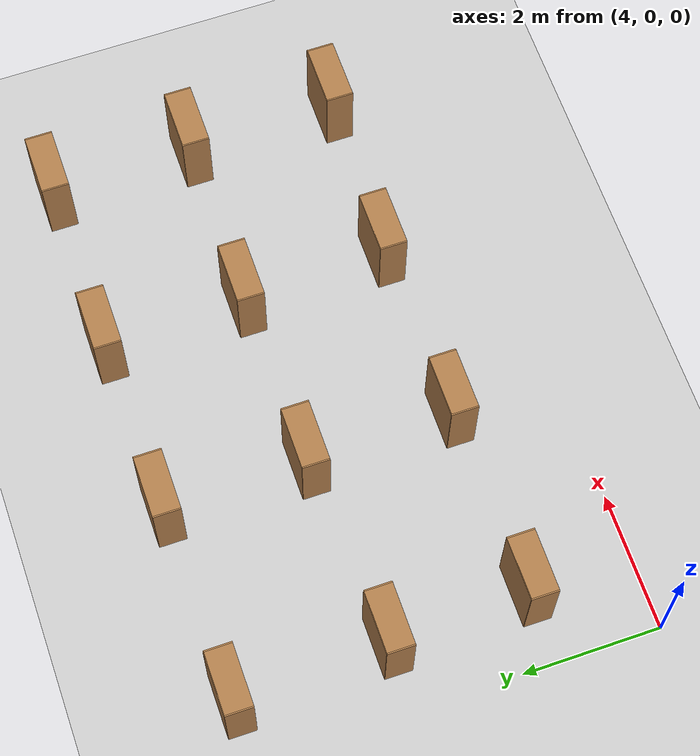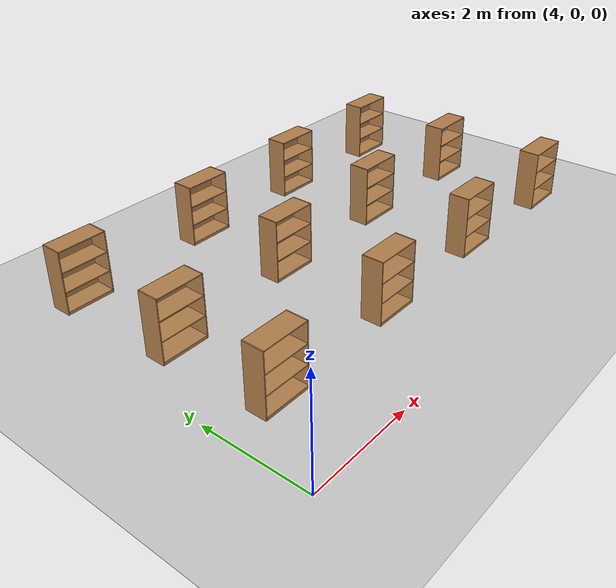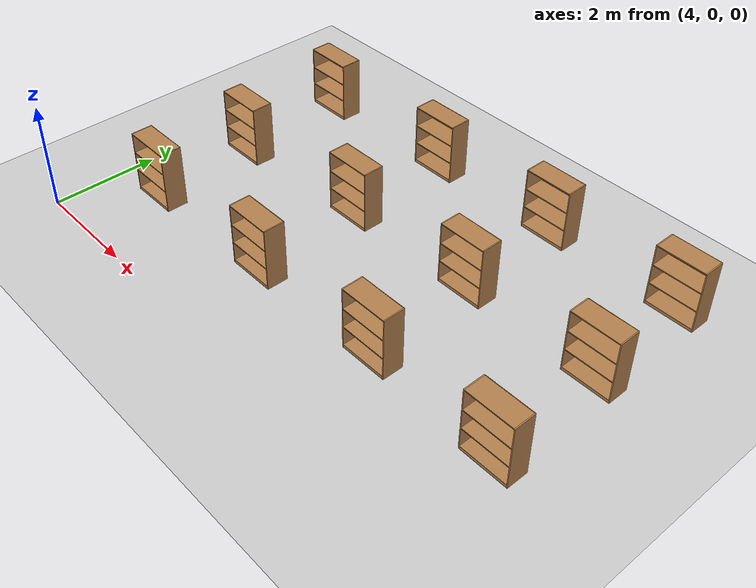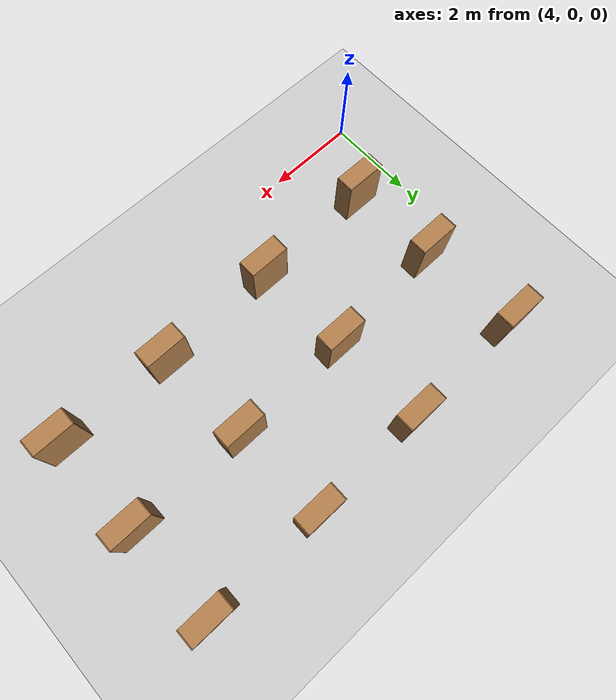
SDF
<sdf version="1.6">
 <world name="default">
  <model name="ground_plane">
   <static>1</static>
   <link name="link">
    <collision name="collision">
     <geometry><plane><normal>0 0 1</normal><size>100 100</size></plane></geometry>
     <surface><friction><ode><mu>100</mu><mu2>50</mu2></ode></friction></surface>
    </collision>
    <visual name="visual">
     <cast_shadows>0</cast_shadows>
     <geometry><plane><normal>0 0 1</normal><size>100 100</size></plane></geometry>
     <material>
      <script><uri>file://media/materials/scripts/gazebo.material</uri><name>Gazebo/Grey</name></script>
     </material>
    </visual>
   </link>
  </model>
  <model name="bookshelf">
   <static>1</static>
   <link name="link">
    <inertial><mass>1</mass></inertial>
    <collision name="back">
     <pose>0 0.005 0.6 0 -0 0</pose>
     <geometry><box><size>0.9 0.01 1.2</size></box></geometry>
    </collision>
    <visual name="visual1">
     <pose>0 0.005 0.6 0 -0 0</pose>
     <geometry><box><size>0.9 0.01 1.2</size></box></geometry>
     <material>
      <script><uri>file://media/materials/scripts/gazebo.material</uri><name>Gazebo/Wood</name></script>
     </material>
    </visual>
    <collision name="left_side">
     <pose>0.45 -0.195 0.6 0 -0 0</pose>
     <geometry><box><size>0.02 0.4 1.2</size></box></geometry>
    </collision>
    <visual name="visual2">
     <pose>0.45 -0.195 0.6 0 -0 0</pose>
     <geometry><box><size>0.02 0.4 1.2</size></box></geometry>
     <material>
      <script><uri>file://media/materials/scripts/gazebo.material</uri><name>Gazebo/Wood</name></script>
     </material>
    </visual>
    <collision name="right_side">
     <pose>-0.45 -0.195 0.6 0 -0 0</pose>
     <geometry><box><size>0.02 0.4 1.2</size></box></geometry>
    </collision>
    <visual name="visual3">
     <pose>-0.45 -0.195 0.6 0 -0 0</pose>
     <geometry><box><size>0.02 0.4 1.2</size></box></geometry>
     <material>
      <script><uri>file://media/materials/scripts/gazebo.material</uri><name>Gazebo/Wood</name></script>
     </material>
    </visual>
    <collision name="bottom">
     <pose>0 -0.195 0.03 0 -0 0</pose>
     <geometry><box><size>0.88 0.4 0.06</size></box></geometry>
    </collision>
    <visual name="visual4">
     <pose>0 -0.195 0.03 0 -0 0</pose>
     <geometry><box><size>0.88 0.4 0.06</size></box></geometry>
     <material>
      <script><uri>file://media/materials/scripts/gazebo.material</uri><name>Gazebo/Wood</name></script>
     </material>
    </visual>
    <collision name="top">
     <pose>0 -0.195 1.19 0 -0 0</pose>
     <geometry><box><size>0.88 0.4 0.02</size></box></geometry>
    </collision>
    <visual name="visual5">
     <pose>0 -0.195 1.19 0 -0 0</pose>
     <geometry><box><size>0.88 0.4 0.02</size></box></geometry>
     <material>
      <script><uri>file://media/materials/scripts/gazebo.material</uri><name>Gazebo/Wood</name></script>
     </material>
    </visual>
    <collision name="low_shelf">
     <pose>0 -0.195 0.43 0 -0 0</pose>
     <geometry><box><size>0.88 0.4 0.02</size></box></geometry>
    </collision>
    <visual name="visual6">
     <pose>0 -0.195 0.43 0 -0 0</pose>
     <geometry><box><size>0.88 0.4 0.02</size></box></geometry>
     <material>
      <script><uri>file://media/materials/scripts/gazebo.material</uri><name>Gazebo/Wood</name></script>
     </material>
    </visual>
    <collision name="high_shelf">
     <pose>0 -0.195 0.8 0 -0 0</pose>
     <geometry><box><size>0.88 0.4 0.02</size></box></geometry>
    </collision>
    <visual name="visual7">
     <pose>0 -0.195 0.8 0 -0 0</pose>
     <geometry><box><size>0.88 0.4 0.02</size></box></geometry>
     <material>
      <script><uri>file://media/materials/scripts/gazebo.material</uri><name>Gazebo/Wood</name></script>
     </material>
    </visual>
   </link>
   <pose>5.07069 1.74089 0 0 -0 0</pose>
  </model>
  <model name="bookshelf_0">
   <static>1</static>
   <link name="link">
    <inertial><mass>1</mass></inertial>
    <collision name="back">
     <pose>0 0.005 0.6 0 -0 0</pose>
     <geometry><box><size>0.9 0.01 1.2</size></box></geometry>
    </collision>
    <visual name="visual1">
     <pose>0 0.005 0.6 0 -0 0</pose>
     <geometry><box><size>0.9 0.01 1.2</size></box></geometry>
     <material>
      <script><uri>file://media/materials/scripts/gazebo.material</uri><name>Gazebo/Wood</name></script>
     </material>
    </visual>
    <collision name="left_side">
     <pose>0.45 -0.195 0.6 0 -0 0</pose>
     <geometry><box><size>0.02 0.4 1.2</size></box></geometry>
    </collision>
    <visual name="visual2">
     <pose>0.45 -0.195 0.6 0 -0 0</pose>
     <geometry><box><size>0.02 0.4 1.2</size></box></geometry>
     <material>
      <script><uri>file://media/materials/scripts/gazebo.material</uri><name>Gazebo/Wood</name></script>
     </material>
    </visual>
    <collision name="right_side">
     <pose>-0.45 -0.195 0.6 0 -0 0</pose>
     <geometry><box><size>0.02 0.4 1.2</size></box></geometry>
    </collision>
    <visual name="visual3">
     <pose>-0.45 -0.195 0.6 0 -0 0</pose>
     <geometry><box><size>0.02 0.4 1.2</size></box></geometry>
     <material>
      <script><uri>file://media/materials/scripts/gazebo.material</uri><name>Gazebo/Wood</name></script>
     </material>
    </visual>
    <collision name="bottom">
     <pose>0 -0.195 0.03 0 -0 0</pose>
     <geometry><box><size>0.88 0.4 0.06</size></box></geometry>
    </collision>
    <visual name="visual4">
     <pose>0 -0.195 0.03 0 -0 0</pose>
     <geometry><box><size>0.88 0.4 0.06</size></box></geometry>
     <material>
      <script><uri>file://media/materials/scripts/gazebo.material</uri><name>Gazebo/Wood</name></script>
     </material>
    </visual>
    <collision name="top">
     <pose>0 -0.195 1.19 0 -0 0</pose>
     <geometry><box><size>0.88 0.4 0.02</size></box></geometry>
    </collision>
    <visual name="visual5">
     <pose>0 -0.195 1.19 0 -0 0</pose>
     <geometry><box><size>0.88 0.4 0.02</size></box></geometry>
     <material>
      <script><uri>file://media/materials/scripts/gazebo.material</uri><name>Gazebo/Wood</name></script>
     </material>
    </visual>
    <collision name="low_shelf">
     <pose>0 -0.195 0.43 0 -0 0</pose>
     <geometry><box><size>0.88 0.4 0.02</size></box></geometry>
    </collision>
    <visual name="visual6">
     <pose>0 -0.195 0.43 0 -0 0</pose>
     <geometry><box><size>0.88 0.4 0.02</size></box></geometry>
     <material>
      <script><uri>file://media/materials/scripts/gazebo.material</uri><name>Gazebo/Wood</name></script>
     </material>
    </visual>
    <collision name="high_shelf">
     <pose>0 -0.195 0.8 0 -0 0</pose>
     <geometry><box><size>0.88 0.4 0.02</size></box></geometry>
    </collision>
    <visual name="visual7">
     <pose>0 -0.195 0.8 0 -0 0</pose>
     <geometry><box><size>0.88 0.4 0.02</size></box></geometry>
     <material>
      <script><uri>file://media/materials/scripts/gazebo.material</uri><name>Gazebo/Wood</name></script>
     </material>
    </visual>
   </link>
   <pose>4.99494 3.76583 0 0 -0 0</pose>
  </model>
  <model name="bookshelf_1">
   <static>1</static>
   <link name="link">
    <inertial><mass>1</mass></inertial>
    <collision name="back">
     <pose>0 0.005 0.6 0 -0 0</pose>
     <geometry><box><size>0.9 0.01 1.2</size></box></geometry>
    </collision>
    <visual name="visual1">
     <pose>0 0.005 0.6 0 -0 0</pose>
     <geometry><box><size>0.9 0.01 1.2</size></box></geometry>
     <material>
      <script><uri>file://media/materials/scripts/gazebo.material</uri><name>Gazebo/Wood</name></script>
     </material>
    </visual>
    <collision name="left_side">
     <pose>0.45 -0.195 0.6 0 -0 0</pose>
     <geometry><box><size>0.02 0.4 1.2</size></box></geometry>
    </collision>
    <visual name="visual2">
     <pose>0.45 -0.195 0.6 0 -0 0</pose>
     <geometry><box><size>0.02 0.4 1.2</size></box></geometry>
     <material>
      <script><uri>file://media/materials/scripts/gazebo.material</uri><name>Gazebo/Wood</name></script>
     </material>
    </visual>
    <collision name="right_side">
     <pose>-0.45 -0.195 0.6 0 -0 0</pose>
     <geometry><box><size>0.02 0.4 1.2</size></box></geometry>
    </collision>
    <visual name="visual3">
     <pose>-0.45 -0.195 0.6 0 -0 0</pose>
     <geometry><box><size>0.02 0.4 1.2</size></box></geometry>
     <material>
      <script><uri>file://media/materials/scripts/gazebo.material</uri><name>Gazebo/Wood</name></script>
     </material>
    </visual>
    <collision name="bottom">
     <pose>0 -0.195 0.03 0 -0 0</pose>
     <geometry><box><size>0.88 0.4 0.06</size></box></geometry>
    </collision>
    <visual name="visual4">
     <pose>0 -0.195 0.03 0 -0 0</pose>
     <geometry><box><size>0.88 0.4 0.06</size></box></geometry>
     <material>
      <script><uri>file://media/materials/scripts/gazebo.material</uri><name>Gazebo/Wood</name></script>
     </material>
    </visual>
    <collision name="top">
     <pose>0 -0.195 1.19 0 -0 0</pose>
     <geometry><box><size>0.88 0.4 0.02</size></box></geometry>
    </collision>
    <visual name="visual5">
     <pose>0 -0.195 1.19 0 -0 0</pose>
     <geometry><box><size>0.88 0.4 0.02</size></box></geometry>
     <material>
      <script><uri>file://media/materials/scripts/gazebo.material</uri><name>Gazebo/Wood</name></script>
     </material>
    </visual>
    <collision name="low_shelf">
     <pose>0 -0.195 0.43 0 -0 0</pose>
     <geometry><box><size>0.88 0.4 0.02</size></box></geometry>
    </collision>
    <visual name="visual6">
     <pose>0 -0.195 0.43 0 -0 0</pose>
     <geometry><box><size>0.88 0.4 0.02</size></box></geometry>
     <material>
      <script><uri>file://media/materials/scripts/gazebo.material</uri><name>Gazebo/Wood</name></script>
     </material>
    </visual>
    <collision name="high_shelf">
     <pose>0 -0.195 0.8 0 -0 0</pose>
     <geometry><box><size>0.88 0.4 0.02</size></box></geometry>
    </collision>
    <visual name="visual7">
     <pose>0 -0.195 0.8 0 -0 0</pose>
     <geometry><box><size>0.88 0.4 0.02</size></box></geometry>
     <material>
      <script><uri>file://media/materials/scripts/gazebo.material</uri><name>Gazebo/Wood</name></script>
     </material>
    </visual>
   </link>
   <pose>4.89893 5.99147 0 0 -0 0</pose>
  </model>
  <model name="bookshelf_2">
   <static>1</static>
   <link name="link">
    <inertial><mass>1</mass></inertial>
    <collision name="back">
     <pose>0 0.005 0.6 0 -0 0</pose>
     <geometry><box><size>0.9 0.01 1.2</size></box></geometry>
    </collision>
    <visual name="visual1">
     <pose>0 0.005 0.6 0 -0 0</pose>
     <geometry><box><size>0.9 0.01 1.2</size></box></geometry>
     <material>
      <script><uri>file://media/materials/scripts/gazebo.material</uri><name>Gazebo/Wood</name></script>
     </material>
    </visual>
    <collision name="left_side">
     <pose>0.45 -0.195 0.6 0 -0 0</pose>
     <geometry><box><size>0.02 0.4 1.2</size></box></geometry>
    </collision>
    <visual name="visual2">
     <pose>0.45 -0.195 0.6 0 -0 0</pose>
     <geometry><box><size>0.02 0.4 1.2</size></box></geometry>
     <material>
      <script><uri>file://media/materials/scripts/gazebo.material</uri><name>Gazebo/Wood</name></script>
     </material>
    </visual>
    <collision name="right_side">
     <pose>-0.45 -0.195 0.6 0 -0 0</pose>
     <geometry><box><size>0.02 0.4 1.2</size></box></geometry>
    </collision>
    <visual name="visual3">
     <pose>-0.45 -0.195 0.6 0 -0 0</pose>
     <geometry><box><size>0.02 0.4 1.2</size></box></geometry>
     <material>
      <script><uri>file://media/materials/scripts/gazebo.material</uri><name>Gazebo/Wood</name></script>
     </material>
    </visual>
    <collision name="bottom">
     <pose>0 -0.195 0.03 0 -0 0</pose>
     <geometry><box><size>0.88 0.4 0.06</size></box></geometry>
    </collision>
    <visual name="visual4">
     <pose>0 -0.195 0.03 0 -0 0</pose>
     <geometry><box><size>0.88 0.4 0.06</size></box></geometry>
     <material>
      <script><uri>file://media/materials/scripts/gazebo.material</uri><name>Gazebo/Wood</name></script>
     </material>
    </visual>
    <collision name="top">
     <pose>0 -0.195 1.19 0 -0 0</pose>
     <geometry><box><size>0.88 0.4 0.02</size></box></geometry>
    </collision>
    <visual name="visual5">
     <pose>0 -0.195 1.19 0 -0 0</pose>
     <geometry><box><size>0.88 0.4 0.02</size></box></geometry>
     <material>
      <script><uri>file://media/materials/scripts/gazebo.material</uri><name>Gazebo/Wood</name></script>
     </material>
    </visual>
    <collision name="low_shelf">
     <pose>0 -0.195 0.43 0 -0 0</pose>
     <geometry><box><size>0.88 0.4 0.02</size></box></geometry>
    </collision>
    <visual name="visual6">
     <pose>0 -0.195 0.43 0 -0 0</pose>
     <geometry><box><size>0.88 0.4 0.02</size></box></geometry>
     <material>
      <script><uri>file://media/materials/scripts/gazebo.material</uri><name>Gazebo/Wood</name></script>
     </material>
    </visual>
    <collision name="high_shelf">
     <pose>0 -0.195 0.8 0 -0 0</pose>
     <geometry><box><size>0.88 0.4 0.02</size></box></geometry>
    </collision>
    <visual name="visual7">
     <pose>0 -0.195 0.8 0 -0 0</pose>
     <geometry><box><size>0.88 0.4 0.02</size></box></geometry>
     <material>
      <script><uri>file://media/materials/scripts/gazebo.material</uri><name>Gazebo/Wood</name></script>
     </material>
    </visual>
   </link>
   <pose>7.85423 1.81787 0 0 -0 0</pose>
  </model>
  <model name="bookshelf_3">
   <static>1</static>
   <link name="link">
    <inertial><mass>1</mass></inertial>
    <collision name="back">
     <pose>0 0.005 0.6 0 -0 0</pose>
     <geometry><box><size>0.9 0.01 1.2</size></box></geometry>
    </collision>
    <visual name="visual1">
     <pose>0 0.005 0.6 0 -0 0</pose>
     <geometry><box><size>0.9 0.01 1.2</size></box></geometry>
     <material>
      <script><uri>file://media/materials/scripts/gazebo.material</uri><name>Gazebo/Wood</name></script>
     </material>
    </visual>
    <collision name="left_side">
     <pose>0.45 -0.195 0.6 0 -0 0</pose>
     <geometry><box><size>0.02 0.4 1.2</size></box></geometry>
    </collision>
    <visual name="visual2">
     <pose>0.45 -0.195 0.6 0 -0 0</pose>
     <geometry><box><size>0.02 0.4 1.2</size></box></geometry>
     <material>
      <script><uri>file://media/materials/scripts/gazebo.material</uri><name>Gazebo/Wood</name></script>
     </material>
    </visual>
    <collision name="right_side">
     <pose>-0.45 -0.195 0.6 0 -0 0</pose>
     <geometry><box><size>0.02 0.4 1.2</size></box></geometry>
    </collision>
    <visual name="visual3">
     <pose>-0.45 -0.195 0.6 0 -0 0</pose>
     <geometry><box><size>0.02 0.4 1.2</size></box></geometry>
     <material>
      <script><uri>file://media/materials/scripts/gazebo.material</uri><name>Gazebo/Wood</name></script>
     </material>
    </visual>
    <collision name="bottom">
     <pose>0 -0.195 0.03 0 -0 0</pose>
     <geometry><box><size>0.88 0.4 0.06</size></box></geometry>
    </collision>
    <visual name="visual4">
     <pose>0 -0.195 0.03 0 -0 0</pose>
     <geometry><box><size>0.88 0.4 0.06</size></box></geometry>
     <material>
      <script><uri>file://media/materials/scripts/gazebo.material</uri><name>Gazebo/Wood</name></script>
     </material>
    </visual>
    <collision name="top">
     <pose>0 -0.195 1.19 0 -0 0</pose>
     <geometry><box><size>0.88 0.4 0.02</size></box></geometry>
    </collision>
    <visual name="visual5">
     <pose>0 -0.195 1.19 0 -0 0</pose>
     <geometry><box><size>0.88 0.4 0.02</size></box></geometry>
     <material>
      <script><uri>file://media/materials/scripts/gazebo.material</uri><name>Gazebo/Wood</name></script>
     </material>
    </visual>
    <collision name="low_shelf">
     <pose>0 -0.195 0.43 0 -0 0</pose>
     <geometry><box><size>0.88 0.4 0.02</size></box></geometry>
    </collision>
    <visual name="visual6">
     <pose>0 -0.195 0.43 0 -0 0</pose>
     <geometry><box><size>0.88 0.4 0.02</size></box></geometry>
     <material>
      <script><uri>file://media/materials/scripts/gazebo.material</uri><name>Gazebo/Wood</name></script>
     </material>
    </visual>
    <collision name="high_shelf">
     <pose>0 -0.195 0.8 0 -0 0</pose>
     <geometry><box><size>0.88 0.4 0.02</size></box></geometry>
    </collision>
    <visual name="visual7">
     <pose>0 -0.195 0.8 0 -0 0</pose>
     <geometry><box><size>0.88 0.4 0.02</size></box></geometry>
     <material>
      <script><uri>file://media/materials/scripts/gazebo.material</uri><name>Gazebo/Wood</name></script>
     </material>
    </visual>
   </link>
   <pose>7.78418 3.97715 0 0 -0 0</pose>
  </model>
  <model name="bookshelf_5">
   <static>1</static>
   <link name="link">
    <inertial><mass>1</mass></inertial>
    <collision name="back">
     <pose>0 0.005 0.6 0 -0 0</pose>
     <geometry><box><size>0.9 0.01 1.2</size></box></geometry>
    </collision>
    <visual name="visual1">
     <pose>0 0.005 0.6 0 -0 0</pose>
     <geometry><box><size>0.9 0.01 1.2</size></box></geometry>
     <material>
      <script><uri>file://media/materials/scripts/gazebo.material</uri><name>Gazebo/Wood</name></script>
     </material>
    </visual>
    <collision name="left_side">
     <pose>0.45 -0.195 0.6 0 -0 0</pose>
     <geometry><box><size>0.02 0.4 1.2</size></box></geometry>
    </collision>
    <visual name="visual2">
     <pose>0.45 -0.195 0.6 0 -0 0</pose>
     <geometry><box><size>0.02 0.4 1.2</size></box></geometry>
     <material>
      <script><uri>file://media/materials/scripts/gazebo.material</uri><name>Gazebo/Wood</name></script>
     </material>
    </visual>
    <collision name="right_side">
     <pose>-0.45 -0.195 0.6 0 -0 0</pose>
     <geometry><box><size>0.02 0.4 1.2</size></box></geometry>
    </collision>
    <visual name="visual3">
     <pose>-0.45 -0.195 0.6 0 -0 0</pose>
     <geometry><box><size>0.02 0.4 1.2</size></box></geometry>
     <material>
      <script><uri>file://media/materials/scripts/gazebo.material</uri><name>Gazebo/Wood</name></script>
     </material>
    </visual>
    <collision name="bottom">
     <pose>0 -0.195 0.03 0 -0 0</pose>
     <geometry><box><size>0.88 0.4 0.06</size></box></geometry>
    </collision>
    <visual name="visual4">
     <pose>0 -0.195 0.03 0 -0 0</pose>
     <geometry><box><size>0.88 0.4 0.06</size></box></geometry>
     <material>
      <script><uri>file://media/materials/scripts/gazebo.material</uri><name>Gazebo/Wood</name></script>
     </material>
    </visual>
    <collision name="top">
     <pose>0 -0.195 1.19 0 -0 0</pose>
     <geometry><box><size>0.88 0.4 0.02</size></box></geometry>
    </collision>
    <visual name="visual5">
     <pose>0 -0.195 1.19 0 -0 0</pose>
     <geometry><box><size>0.88 0.4 0.02</size></box></geometry>
     <material>
      <script><uri>file://media/materials/scripts/gazebo.material</uri><name>Gazebo/Wood</name></script>
     </material>
    </visual>
    <collision name="low_shelf">
     <pose>0 -0.195 0.43 0 -0 0</pose>
     <geometry><box><size>0.88 0.4 0.02</size></box></geometry>
    </collision>
    <visual name="visual6">
     <pose>0 -0.195 0.43 0 -0 0</pose>
     <geometry><box><size>0.88 0.4 0.02</size></box></geometry>
     <material>
      <script><uri>file://media/materials/scripts/gazebo.material</uri><name>Gazebo/Wood</name></script>
     </material>
    </visual>
    <collision name="high_shelf">
     <pose>0 -0.195 0.8 0 -0 0</pose>
     <geometry><box><size>0.88 0.4 0.02</size></box></geometry>
    </collision>
    <visual name="visual7">
     <pose>0 -0.195 0.8 0 -0 0</pose>
     <geometry><box><size>0.88 0.4 0.02</size></box></geometry>
     <material>
      <script><uri>file://media/materials/scripts/gazebo.material</uri><name>Gazebo/Wood</name></script>
     </material>
    </visual>
   </link>
   <pose>10.5476 1.88264 0 0 -0 0</pose>
  </model>
  <model name="bookshelf_6">
   <static>1</static>
   <link name="link">
    <inertial><mass>1</mass></inertial>
    <collision name="back">
     <pose>0 0.005 0.6 0 -0 0</pose>
     <geometry><box><size>0.9 0.01 1.2</size></box></geometry>
    </collision>
    <visual name="visual1">
     <pose>0 0.005 0.6 0 -0 0</pose>
     <geometry><box><size>0.9 0.01 1.2</size></box></geometry>
     <material>
      <script><uri>file://media/materials/scripts/gazebo.material</uri><name>Gazebo/Wood</name></script>
     </material>
    </visual>
    <collision name="left_side">
     <pose>0.45 -0.195 0.6 0 -0 0</pose>
     <geometry><box><size>0.02 0.4 1.2</size></box></geometry>
    </collision>
    <visual name="visual2">
     <pose>0.45 -0.195 0.6 0 -0 0</pose>
     <geometry><box><size>0.02 0.4 1.2</size></box></geometry>
     <material>
      <script><uri>file://media/materials/scripts/gazebo.material</uri><name>Gazebo/Wood</name></script>
     </material>
    </visual>
    <collision name="right_side">
     <pose>-0.45 -0.195 0.6 0 -0 0</pose>
     <geometry><box><size>0.02 0.4 1.2</size></box></geometry>
    </collision>
    <visual name="visual3">
     <pose>-0.45 -0.195 0.6 0 -0 0</pose>
     <geometry><box><size>0.02 0.4 1.2</size></box></geometry>
     <material>
      <script><uri>file://media/materials/scripts/gazebo.material</uri><name>Gazebo/Wood</name></script>
     </material>
    </visual>
    <collision name="bottom">
     <pose>0 -0.195 0.03 0 -0 0</pose>
     <geometry><box><size>0.88 0.4 0.06</size></box></geometry>
    </collision>
    <visual name="visual4">
     <pose>0 -0.195 0.03 0 -0 0</pose>
     <geometry><box><size>0.88 0.4 0.06</size></box></geometry>
     <material>
      <script><uri>file://media/materials/scripts/gazebo.material</uri><name>Gazebo/Wood</name></script>
     </material>
    </visual>
    <collision name="top">
     <pose>0 -0.195 1.19 0 -0 0</pose>
     <geometry><box><size>0.88 0.4 0.02</size></box></geometry>
    </collision>
    <visual name="visual5">
     <pose>0 -0.195 1.19 0 -0 0</pose>
     <geometry><box><size>0.88 0.4 0.02</size></box></geometry>
     <material>
      <script><uri>file://media/materials/scripts/gazebo.material</uri><name>Gazebo/Wood</name></script>
     </material>
    </visual>
    <collision name="low_shelf">
     <pose>0 -0.195 0.43 0 -0 0</pose>
     <geometry><box><size>0.88 0.4 0.02</size></box></geometry>
    </collision>
    <visual name="visual6">
     <pose>0 -0.195 0.43 0 -0 0</pose>
     <geometry><box><size>0.88 0.4 0.02</size></box></geometry>
     <material>
      <script><uri>file://media/materials/scripts/gazebo.material</uri><name>Gazebo/Wood</name></script>
     </material>
    </visual>
    <collision name="high_shelf">
     <pose>0 -0.195 0.8 0 -0 0</pose>
     <geometry><box><size>0.88 0.4 0.02</size></box></geometry>
    </collision>
    <visual name="visual7">
     <pose>0 -0.195 0.8 0 -0 0</pose>
     <geometry><box><size>0.88 0.4 0.02</size></box></geometry>
     <material>
      <script><uri>file://media/materials/scripts/gazebo.material</uri><name>Gazebo/Wood</name></script>
     </material>
    </visual>
   </link>
   <pose>10.4315 4.03547 0 0 -0 0</pose>
  </model>
  <model name="bookshelf_8">
   <static>1</static>
   <link name="link">
    <inertial><mass>1</mass></inertial>
    <collision name="back">
     <pose>0 0.005 0.6 0 -0 0</pose>
     <geometry><box><size>0.9 0.01 1.2</size></box></geometry>
    </collision>
    <visual name="visual1">
     <pose>0 0.005 0.6 0 -0 0</pose>
     <geometry><box><size>0.9 0.01 1.2</size></box></geometry>
     <material>
      <script><uri>file://media/materials/scripts/gazebo.material</uri><name>Gazebo/Wood</name></script>
     </material>
    </visual>
    <collision name="left_side">
     <pose>0.45 -0.195 0.6 0 -0 0</pose>
     <geometry><box><size>0.02 0.4 1.2</size></box></geometry>
    </collision>
    <visual name="visual2">
     <pose>0.45 -0.195 0.6 0 -0 0</pose>
     <geometry><box><size>0.02 0.4 1.2</size></box></geometry>
     <material>
      <script><uri>file://media/materials/scripts/gazebo.material</uri><name>Gazebo/Wood</name></script>
     </material>
    </visual>
    <collision name="right_side">
     <pose>-0.45 -0.195 0.6 0 -0 0</pose>
     <geometry><box><size>0.02 0.4 1.2</size></box></geometry>
    </collision>
    <visual name="visual3">
     <pose>-0.45 -0.195 0.6 0 -0 0</pose>
     <geometry><box><size>0.02 0.4 1.2</size></box></geometry>
     <material>
      <script><uri>file://media/materials/scripts/gazebo.material</uri><name>Gazebo/Wood</name></script>
     </material>
    </visual>
    <collision name="bottom">
     <pose>0 -0.195 0.03 0 -0 0</pose>
     <geometry><box><size>0.88 0.4 0.06</size></box></geometry>
    </collision>
    <visual name="visual4">
     <pose>0 -0.195 0.03 0 -0 0</pose>
     <geometry><box><size>0.88 0.4 0.06</size></box></geometry>
     <material>
      <script><uri>file://media/materials/scripts/gazebo.material</uri><name>Gazebo/Wood</name></script>
     </material>
    </visual>
    <collision name="top">
     <pose>0 -0.195 1.19 0 -0 0</pose>
     <geometry><box><size>0.88 0.4 0.02</size></box></geometry>
    </collision>
    <visual name="visual5">
     <pose>0 -0.195 1.19 0 -0 0</pose>
     <geometry><box><size>0.88 0.4 0.02</size></box></geometry>
     <material>
      <script><uri>file://media/materials/scripts/gazebo.material</uri><name>Gazebo/Wood</name></script>
     </material>
    </visual>
    <collision name="low_shelf">
     <pose>0 -0.195 0.43 0 -0 0</pose>
     <geometry><box><size>0.88 0.4 0.02</size></box></geometry>
    </collision>
    <visual name="visual6">
     <pose>0 -0.195 0.43 0 -0 0</pose>
     <geometry><box><size>0.88 0.4 0.02</size></box></geometry>
     <material>
      <script><uri>file://media/materials/scripts/gazebo.material</uri><name>Gazebo/Wood</name></script>
     </material>
    </visual>
    <collision name="high_shelf">
     <pose>0 -0.195 0.8 0 -0 0</pose>
     <geometry><box><size>0.88 0.4 0.02</size></box></geometry>
    </collision>
    <visual name="visual7">
     <pose>0 -0.195 0.8 0 -0 0</pose>
     <geometry><box><size>0.88 0.4 0.02</size></box></geometry>
     <material>
      <script><uri>file://media/materials/scripts/gazebo.material</uri><name>Gazebo/Wood</name></script>
     </material>
    </visual>
   </link>
   <pose>7.76291 6.07369 0 0 -0 0</pose>
  </model>
  <model name="bookshelf_9">
   <static>1</static>
   <link name="link">
    <inertial><mass>1</mass></inertial>
    <collision name="back">
     <pose>0 0.005 0.6 0 -0 0</pose>
     <geometry><box><size>0.9 0.01 1.2</size></box></geometry>
    </collision>
    <visual name="visual1">
     <pose>0 0.005 0.6 0 -0 0</pose>
     <geometry><box><size>0.9 0.01 1.2</size></box></geometry>
     <material>
      <script><uri>file://media/materials/scripts/gazebo.material</uri><name>Gazebo/Wood</name></script>
     </material>
    </visual>
    <collision name="left_side">
     <pose>0.45 -0.195 0.6 0 -0 0</pose>
     <geometry><box><size>0.02 0.4 1.2</size></box></geometry>
    </collision>
    <visual name="visual2">
     <pose>0.45 -0.195 0.6 0 -0 0</pose>
     <geometry><box><size>0.02 0.4 1.2</size></box></geometry>
     <material>
      <script><uri>file://media/materials/scripts/gazebo.material</uri><name>Gazebo/Wood</name></script>
     </material>
    </visual>
    <collision name="right_side">
     <pose>-0.45 -0.195 0.6 0 -0 0</pose>
     <geometry><box><size>0.02 0.4 1.2</size></box></geometry>
    </collision>
    <visual name="visual3">
     <pose>-0.45 -0.195 0.6 0 -0 0</pose>
     <geometry><box><size>0.02 0.4 1.2</size></box></geometry>
     <material>
      <script><uri>file://media/materials/scripts/gazebo.material</uri><name>Gazebo/Wood</name></script>
     </material>
    </visual>
    <collision name="bottom">
     <pose>0 -0.195 0.03 0 -0 0</pose>
     <geometry><box><size>0.88 0.4 0.06</size></box></geometry>
    </collision>
    <visual name="visual4">
     <pose>0 -0.195 0.03 0 -0 0</pose>
     <geometry><box><size>0.88 0.4 0.06</size></box></geometry>
     <material>
      <script><uri>file://media/materials/scripts/gazebo.material</uri><name>Gazebo/Wood</name></script>
     </material>
    </visual>
    <collision name="top">
     <pose>0 -0.195 1.19 0 -0 0</pose>
     <geometry><box><size>0.88 0.4 0.02</size></box></geometry>
    </collision>
    <visual name="visual5">
     <pose>0 -0.195 1.19 0 -0 0</pose>
     <geometry><box><size>0.88 0.4 0.02</size></box></geometry>
     <material>
      <script><uri>file://media/materials/scripts/gazebo.material</uri><name>Gazebo/Wood</name></script>
     </material>
    </visual>
    <collision name="low_shelf">
     <pose>0 -0.195 0.43 0 -0 0</pose>
     <geometry><box><size>0.88 0.4 0.02</size></box></geometry>
    </collision>
    <visual name="visual6">
     <pose>0 -0.195 0.43 0 -0 0</pose>
     <geometry><box><size>0.88 0.4 0.02</size></box></geometry>
     <material>
      <script><uri>file://media/materials/scripts/gazebo.material</uri><name>Gazebo/Wood</name></script>
     </material>
    </visual>
    <collision name="high_shelf">
     <pose>0 -0.195 0.8 0 -0 0</pose>
     <geometry><box><size>0.88 0.4 0.02</size></box></geometry>
    </collision>
    <visual name="visual7">
     <pose>0 -0.195 0.8 0 -0 0</pose>
     <geometry><box><size>0.88 0.4 0.02</size></box></geometry>
     <material>
      <script><uri>file://media/materials/scripts/gazebo.material</uri><name>Gazebo/Wood</name></script>
     </material>
    </visual>
   </link>
   <pose>10.3772 6.12661 0 0 -0 0</pose>
  </model>
  <model name="bookshelf_10">
   <static>1</static>
   <link name="link">
    <inertial><mass>1</mass></inertial>
    <collision name="back">
     <pose>0 0.005 0.6 0 -0 0</pose>
     <geometry><box><size>0.9 0.01 1.2</size></box></geometry>
    </collision>
    <visual name="visual1">
     <pose>0 0.005 0.6 0 -0 0</pose>
     <geometry><box><size>0.9 0.01 1.2</size></box></geometry>
     <material>
      <script><uri>file://media/materials/scripts/gazebo.material</uri><name>Gazebo/Wood</name></script>
     </material>
    </visual>
    <collision name="left_side">
     <pose>0.45 -0.195 0.6 0 -0 0</pose>
     <geometry><box><size>0.02 0.4 1.2</size></box></geometry>
    </collision>
    <visual name="visual2">
     <pose>0.45 -0.195 0.6 0 -0 0</pose>
     <geometry><box><size>0.02 0.4 1.2</size></box></geometry>
     <material>
      <script><uri>file://media/materials/scripts/gazebo.material</uri><name>Gazebo/Wood</name></script>
     </material>
    </visual>
    <collision name="right_side">
     <pose>-0.45 -0.195 0.6 0 -0 0</pose>
     <geometry><box><size>0.02 0.4 1.2</size></box></geometry>
    </collision>
    <visual name="visual3">
     <pose>-0.45 -0.195 0.6 0 -0 0</pose>
     <geometry><box><size>0.02 0.4 1.2</size></box></geometry>
     <material>
      <script><uri>file://media/materials/scripts/gazebo.material</uri><name>Gazebo/Wood</name></script>
     </material>
    </visual>
    <collision name="bottom">
     <pose>0 -0.195 0.03 0 -0 0</pose>
     <geometry><box><size>0.88 0.4 0.06</size></box></geometry>
    </collision>
    <visual name="visual4">
     <pose>0 -0.195 0.03 0 -0 0</pose>
     <geometry><box><size>0.88 0.4 0.06</size></box></geometry>
     <material>
      <script><uri>file://media/materials/scripts/gazebo.material</uri><name>Gazebo/Wood</name></script>
     </material>
    </visual>
    <collision name="top">
     <pose>0 -0.195 1.19 0 -0 0</pose>
     <geometry><box><size>0.88 0.4 0.02</size></box></geometry>
    </collision>
    <visual name="visual5">
     <pose>0 -0.195 1.19 0 -0 0</pose>
     <geometry><box><size>0.88 0.4 0.02</size></box></geometry>
     <material>
      <script><uri>file://media/materials/scripts/gazebo.material</uri><name>Gazebo/Wood</name></script>
     </material>
    </visual>
    <collision name="low_shelf">
     <pose>0 -0.195 0.43 0 -0 0</pose>
     <geometry><box><size>0.88 0.4 0.02</size></box></geometry>
    </collision>
    <visual name="visual6">
     <pose>0 -0.195 0.43 0 -0 0</pose>
     <geometry><box><size>0.88 0.4 0.02</size></box></geometry>
     <material>
      <script><uri>file://media/materials/scripts/gazebo.material</uri><name>Gazebo/Wood</name></script>
     </material>
    </visual>
    <collision name="high_shelf">
     <pose>0 -0.195 0.8 0 -0 0</pose>
     <geometry><box><size>0.88 0.4 0.02</size></box></geometry>
    </collision>
    <visual name="visual7">
     <pose>0 -0.195 0.8 0 -0 0</pose>
     <geometry><box><size>0.88 0.4 0.02</size></box></geometry>
     <material>
      <script><uri>file://media/materials/scripts/gazebo.material</uri><name>Gazebo/Wood</name></script>
     </material>
    </visual>
   </link>
   <pose>13.0905 1.80698 0 0 -0 0</pose>
  </model>
  <model name="bookshelf_11">
   <static>1</static>
   <link name="link">
    <inertial><mass>1</mass></inertial>
    <collision name="back">
     <pose>0 0.005 0.6 0 -0 0</pose>
     <geometry><box><size>0.9 0.01 1.2</size></box></geometry>
    </collision>
    <visual name="visual1">
     <pose>0 0.005 0.6 0 -0 0</pose>
     <geometry><box><size>0.9 0.01 1.2</size></box></geometry>
     <material>
      <script><uri>file://media/materials/scripts/gazebo.material</uri><name>Gazebo/Wood</name></script>
     </material>
    </visual>
    <collision name="left_side">
     <pose>0.45 -0.195 0.6 0 -0 0</pose>
     <geometry><box><size>0.02 0.4 1.2</size></box></geometry>
    </collision>
    <visual name="visual2">
     <pose>0.45 -0.195 0.6 0 -0 0</pose>
     <geometry><box><size>0.02 0.4 1.2</size></box></geometry>
     <material>
      <script><uri>file://media/materials/scripts/gazebo.material</uri><name>Gazebo/Wood</name></script>
     </material>
    </visual>
    <collision name="right_side">
     <pose>-0.45 -0.195 0.6 0 -0 0</pose>
     <geometry><box><size>0.02 0.4 1.2</size></box></geometry>
    </collision>
    <visual name="visual3">
     <pose>-0.45 -0.195 0.6 0 -0 0</pose>
     <geometry><box><size>0.02 0.4 1.2</size></box></geometry>
     <material>
      <script><uri>file://media/materials/scripts/gazebo.material</uri><name>Gazebo/Wood</name></script>
     </material>
    </visual>
    <collision name="bottom">
     <pose>0 -0.195 0.03 0 -0 0</pose>
     <geometry><box><size>0.88 0.4 0.06</size></box></geometry>
    </collision>
    <visual name="visual4">
     <pose>0 -0.195 0.03 0 -0 0</pose>
     <geometry><box><size>0.88 0.4 0.06</size></box></geometry>
     <material>
      <script><uri>file://media/materials/scripts/gazebo.material</uri><name>Gazebo/Wood</name></script>
     </material>
    </visual>
    <collision name="top">
     <pose>0 -0.195 1.19 0 -0 0</pose>
     <geometry><box><size>0.88 0.4 0.02</size></box></geometry>
    </collision>
    <visual name="visual5">
     <pose>0 -0.195 1.19 0 -0 0</pose>
     <geometry><box><size>0.88 0.4 0.02</size></box></geometry>
     <material>
      <script><uri>file://media/materials/scripts/gazebo.material</uri><name>Gazebo/Wood</name></script>
     </material>
    </visual>
    <collision name="low_shelf">
     <pose>0 -0.195 0.43 0 -0 0</pose>
     <geometry><box><size>0.88 0.4 0.02</size></box></geometry>
    </collision>
    <visual name="visual6">
     <pose>0 -0.195 0.43 0 -0 0</pose>
     <geometry><box><size>0.88 0.4 0.02</size></box></geometry>
     <material>
      <script><uri>file://media/materials/scripts/gazebo.material</uri><name>Gazebo/Wood</name></script>
     </material>
    </visual>
    <collision name="high_shelf">
     <pose>0 -0.195 0.8 0 -0 0</pose>
     <geometry><box><size>0.88 0.4 0.02</size></box></geometry>
    </collision>
    <visual name="visual7">
     <pose>0 -0.195 0.8 0 -0 0</pose>
     <geometry><box><size>0.88 0.4 0.02</size></box></geometry>
     <material>
      <script><uri>file://media/materials/scripts/gazebo.material</uri><name>Gazebo/Wood</name></script>
     </material>
    </visual>
   </link>
   <pose>13.0508 4.01725 0 0 -0 0</pose>
  </model>
  <model name="bookshelf_12">
   <static>1</static>
   <link name="link">
    <inertial><mass>1</mass></inertial>
    <collision name="back">
     <pose>0 0.005 0.6 0 -0 0</pose>
     <geometry><box><size>0.9 0.01 1.2</size></box></geometry>
    </collision>
    <visual name="visual1">
     <pose>0 0.005 0.6 0 -0 0</pose>
     <geometry><box><size>0.9 0.01 1.2</size></box></geometry>
     <material>
      <script><uri>file://media/materials/scripts/gazebo.material</uri><name>Gazebo/Wood</name></script>
     </material>
    </visual>
    <collision name="left_side">
     <pose>0.45 -0.195 0.6 0 -0 0</pose>
     <geometry><box><size>0.02 0.4 1.2</size></box></geometry>
    </collision>
    <visual name="visual2">
     <pose>0.45 -0.195 0.6 0 -0 0</pose>
     <geometry><box><size>0.02 0.4 1.2</size></box></geometry>
     <material>
      <script><uri>file://media/materials/scripts/gazebo.material</uri><name>Gazebo/Wood</name></script>
     </material>
    </visual>
    <collision name="right_side">
     <pose>-0.45 -0.195 0.6 0 -0 0</pose>
     <geometry><box><size>0.02 0.4 1.2</size></box></geometry>
    </collision>
    <visual name="visual3">
     <pose>-0.45 -0.195 0.6 0 -0 0</pose>
     <geometry><box><size>0.02 0.4 1.2</size></box></geometry>
     <material>
      <script><uri>file://media/materials/scripts/gazebo.material</uri><name>Gazebo/Wood</name></script>
     </material>
    </visual>
    <collision name="bottom">
     <pose>0 -0.195 0.03 0 -0 0</pose>
     <geometry><box><size>0.88 0.4 0.06</size></box></geometry>
    </collision>
    <visual name="visual4">
     <pose>0 -0.195 0.03 0 -0 0</pose>
     <geometry><box><size>0.88 0.4 0.06</size></box></geometry>
     <material>
      <script><uri>file://media/materials/scripts/gazebo.material</uri><name>Gazebo/Wood</name></script>
     </material>
    </visual>
    <collision name="top">
     <pose>0 -0.195 1.19 0 -0 0</pose>
     <geometry><box><size>0.88 0.4 0.02</size></box></geometry>
    </collision>
    <visual name="visual5">
     <pose>0 -0.195 1.19 0 -0 0</pose>
     <geometry><box><size>0.88 0.4 0.02</size></box></geometry>
     <material>
      <script><uri>file://media/materials/scripts/gazebo.material</uri><name>Gazebo/Wood</name></script>
     </material>
    </visual>
    <collision name="low_shelf">
     <pose>0 -0.195 0.43 0 -0 0</pose>
     <geometry><box><size>0.88 0.4 0.02</size></box></geometry>
    </collision>
    <visual name="visual6">
     <pose>0 -0.195 0.43 0 -0 0</pose>
     <geometry><box><size>0.88 0.4 0.02</size></box></geometry>
     <material>
      <script><uri>file://media/materials/scripts/gazebo.material</uri><name>Gazebo/Wood</name></script>
     </material>
    </visual>
    <collision name="high_shelf">
     <pose>0 -0.195 0.8 0 -0 0</pose>
     <geometry><box><size>0.88 0.4 0.02</size></box></geometry>
    </collision>
    <visual name="visual7">
     <pose>0 -0.195 0.8 0 -0 0</pose>
     <geometry><box><size>0.88 0.4 0.02</size></box></geometry>
     <material>
      <script><uri>file://media/materials/scripts/gazebo.material</uri><name>Gazebo/Wood</name></script>
     </material>
    </visual>
   </link>
   <pose>12.9871 6.13358 0 0 -0 0</pose>
  </model>
 </world>
</sdf>
